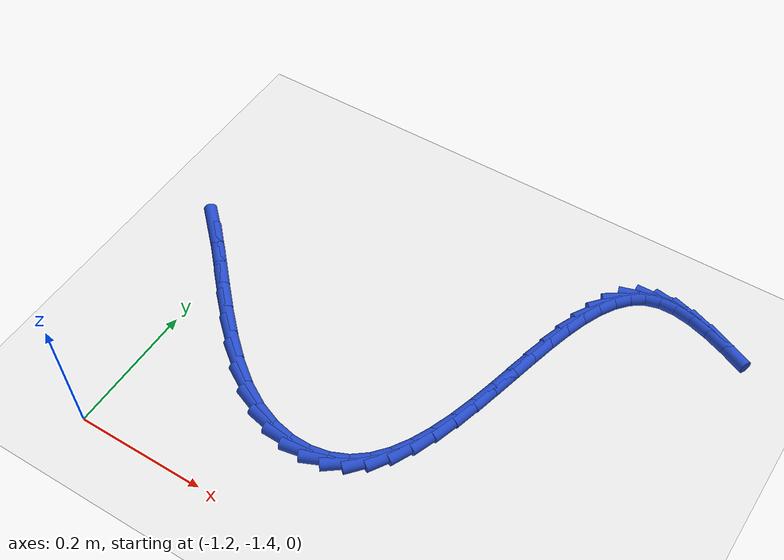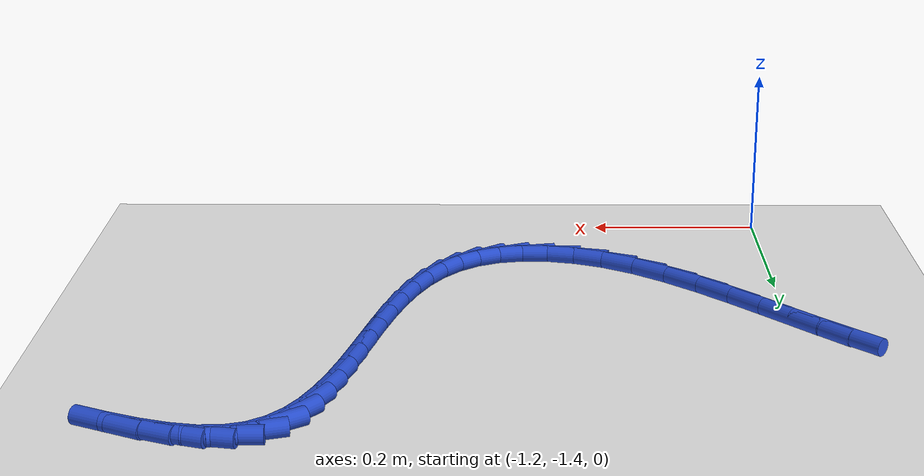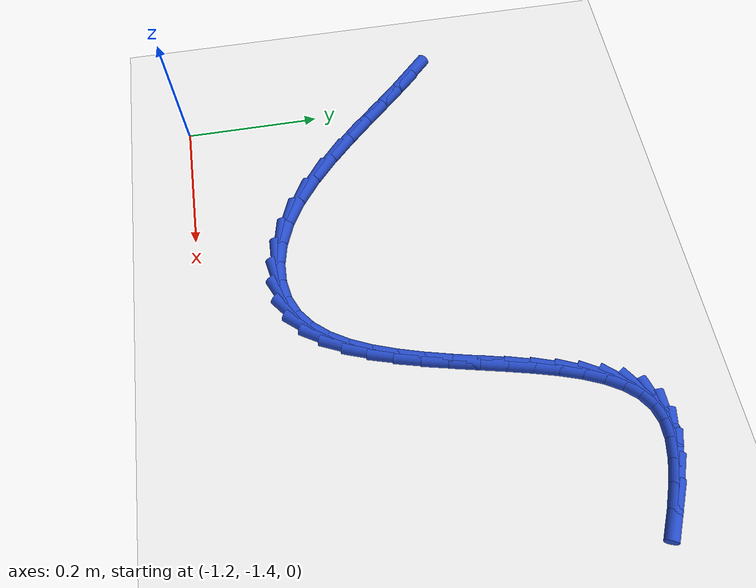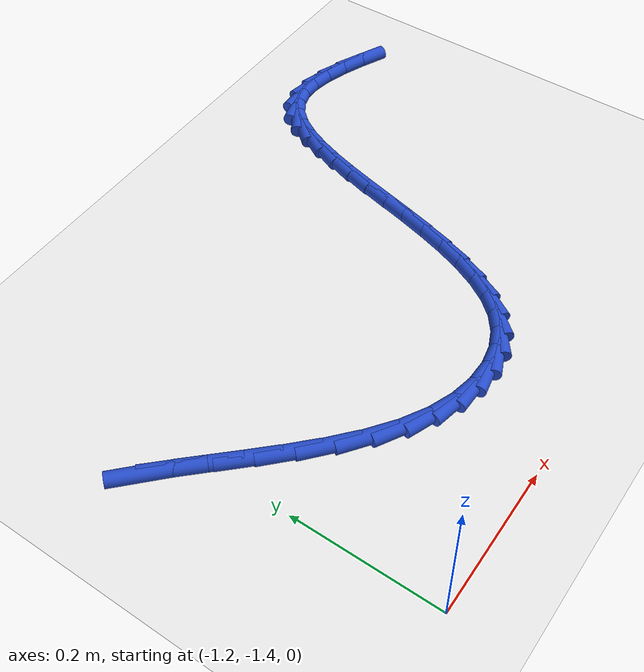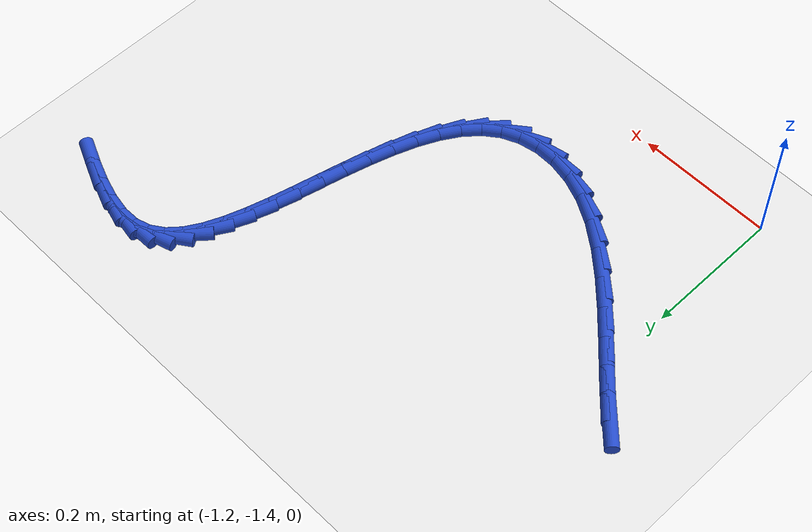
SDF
<sdf version="1.6">
 <world name="default">
  <model name="ground_plane">
   <static>1</static>
   <link name="link">
    <collision name="collision">
     <geometry><plane><normal>0 0 1</normal><size>100 100</size></plane></geometry>
     <surface><friction><ode><mu>100</mu><mu2>50</mu2></ode></friction></surface>
    </collision>
    <visual name="visual">
     <cast_shadows>0</cast_shadows>
     <geometry><plane><normal>0 0 1</normal><size>100 100</size></plane></geometry>
     <material>
      <script><uri>file://media/materials/scripts/gazebo.material</uri><name>Gazebo/WhiteGlow</name></script>
     </material>
    </visual>
   </link>
  </model>
  <model name="line">
   <link name="link_206">
    <pose>-1.2569315825818315 -1.0362236375193883 0.01 0 1.57 -0.767453456586639</pose>
    <collision name="collision">
     <geometry><cylinder><radius>0.01</radius><length>0.08</length></cylinder></geometry>
    </collision>
    <visual name="visual">
     <material>
      <script><name>Gazebo/Blue</name><uri>file://media/materials/scripts/gazebo.material</uri></script>
     </material>
     <geometry><cylinder><radius>0.01</radius><length>0.08</length></cylinder></geometry>
    </visual>
   </link>
   <link name="link_207">
    <pose>-1.2307007327769397 -1.0615295754976846 0.01 0 1.57 -0.8025671334297664</pose>
    <collision name="collision">
     <geometry><cylinder><radius>0.01</radius><length>0.08</length></cylinder></geometry>
    </collision>
    <visual name="visual">
     <material>
      <script><name>Gazebo/Blue</name><uri>file://media/materials/scripts/gazebo.material</uri></script>
     </material>
     <geometry><cylinder><radius>0.01</radius><length>0.08</length></cylinder></geometry>
    </visual>
   </link>
   <link name="link_208">
    <pose>-1.2021254036725506 -1.091103363153447 0.01 0 1.57 -0.8110225085480535</pose>
    <collision name="collision">
     <geometry><cylinder><radius>0.01</radius><length>0.08</length></cylinder></geometry>
    </collision>
    <visual name="visual">
     <material>
      <script><name>Gazebo/Blue</name><uri>file://media/materials/scripts/gazebo.material</uri></script>
     </material>
     <geometry><cylinder><radius>0.01</radius><length>0.08</length></cylinder></geometry>
    </visual>
   </link>
   <link name="link_209">
    <pose>-1.1715904310327716 -1.1232447274894388 0.01 0 1.57 -0.7992011722619942</pose>
    <collision name="collision">
     <geometry><cylinder><radius>0.01</radius><length>0.08</length></cylinder></geometry>
    </collision>
    <visual name="visual">
     <material>
      <script><name>Gazebo/Blue</name><uri>file://media/materials/scripts/gazebo.material</uri></script>
     </material>
     <geometry><cylinder><radius>0.01</radius><length>0.08</length></cylinder></geometry>
    </visual>
   </link>
   <link name="link_210">
    <pose>-1.1394806506217068 -1.1562533955084249 0.01 0 1.57 -0.7682322900083209</pose>
    <collision name="collision">
     <geometry><cylinder><radius>0.01</radius><length>0.08</length></cylinder></geometry>
    </collision>
    <visual name="visual">
     <material>
      <script><name>Gazebo/Blue</name><uri>file://media/materials/scripts/gazebo.material</uri></script>
     </material>
     <geometry><cylinder><radius>0.01</radius><length>0.08</length></cylinder></geometry>
    </visual>
   </link>
   <link name="link_211">
    <pose>-1.1061808982034627 -1.18842909421317 0.01 0 1.57 -0.7155103179483498</pose>
    <collision name="collision">
     <geometry><cylinder><radius>0.01</radius><length>0.08</length></cylinder></geometry>
    </collision>
    <visual name="visual">
     <material>
      <script><name>Gazebo/Blue</name><uri>file://media/materials/scripts/gazebo.material</uri></script>
     </material>
     <geometry><cylinder><radius>0.01</radius><length>0.08</length></cylinder></geometry>
    </visual>
   </link>
   <link name="link_212">
    <pose>-1.0720760095421442 -1.2180715506064381 0.01 0 1.57 -0.6344507097680534</pose>
    <collision name="collision">
     <geometry><cylinder><radius>0.01</radius><length>0.08</length></cylinder></geometry>
    </collision>
    <visual name="visual">
     <material>
      <script><name>Gazebo/Blue</name><uri>file://media/materials/scripts/gazebo.material</uri></script>
     </material>
     <geometry><cylinder><radius>0.01</radius><length>0.08</length></cylinder></geometry>
    </visual>
   </link>
   <link name="link_213">
    <pose>-1.0375508204018573 -1.2434804916909943 0.01 0 1.57 -0.5150592958132321</pose>
    <collision name="collision">
     <geometry><cylinder><radius>0.01</radius><length>0.08</length></cylinder></geometry>
    </collision>
    <visual name="visual">
     <material>
      <script><name>Gazebo/Blue</name><uri>file://media/materials/scripts/gazebo.material</uri></script>
     </material>
     <geometry><cylinder><radius>0.01</radius><length>0.08</length></cylinder></geometry>
    </visual>
   </link>
   <link name="link_214">
    <pose>-1.0030003245926105 -1.263036759272827 0.01 0 1.57 -0.3676125914726553</pose>
    <collision name="collision">
     <geometry><cylinder><radius>0.01</radius><length>0.08</length></cylinder></geometry>
    </collision>
    <visual name="visual">
     <material>
      <script><name>Gazebo/Blue</name><uri>file://media/materials/scripts/gazebo.material</uri></script>
     </material>
     <geometry><cylinder><radius>0.01</radius><length>0.08</length></cylinder></geometry>
    </visual>
   </link>
   <link name="link_215">
    <pose>-0.9689484521853895 -1.2761507868271293 0.01 0 1.57 -0.20328295177722236</pose>
    <collision name="collision">
     <geometry><cylinder><radius>0.01</radius><length>0.08</length></cylinder></geometry>
    </collision>
    <visual name="visual">
     <material>
      <script><name>Gazebo/Blue</name><uri>file://media/materials/scripts/gazebo.material</uri></script>
     </material>
     <geometry><cylinder><radius>0.01</radius><length>0.08</length></cylinder></geometry>
    </visual>
   </link>
   <link name="link_216">
    <pose>-0.9360077771665135 -1.2829408539854947 0.01 0 1.57 -0.0191648331238883</pose>
    <collision name="collision">
     <geometry><cylinder><radius>0.01</radius><length>0.08</length></cylinder></geometry>
    </collision>
    <visual name="visual">
     <material>
      <script><name>Gazebo/Blue</name><uri>file://media/materials/scripts/gazebo.material</uri></script>
     </material>
     <geometry><cylinder><radius>0.01</radius><length>0.08</length></cylinder></geometry>
    </visual>
   </link>
   <link name="link_217">
    <pose>-0.9047926167555085 -1.2835391605783422 0.01 0 1.57 0.18692424014758846</pose>
    <collision name="collision">
     <geometry><cylinder><radius>0.01</radius><length>0.08</length></cylinder></geometry>
    </collision>
    <visual name="visual">
     <material>
      <script><name>Gazebo/Blue</name><uri>file://media/materials/scripts/gazebo.material</uri></script>
     </material>
     <geometry><cylinder><radius>0.01</radius><length>0.08</length></cylinder></geometry>
    </visual>
   </link>
   <link name="link_218">
    <pose>-0.8759172881719042 -1.2780779064360925 0.01 0 1.57 0.4139668559730344</pose>
    <collision name="collision">
     <geometry><cylinder><radius>0.01</radius><length>0.08</length></cylinder></geometry>
    </collision>
    <visual name="visual">
     <material>
      <script><name>Gazebo/Blue</name><uri>file://media/materials/scripts/gazebo.material</uri></script>
     </material>
     <geometry><cylinder><radius>0.01</radius><length>0.08</length></cylinder></geometry>
    </visual>
   </link>
   <link name="link_219">
    <pose>-0.8499961086352261 -1.2666892913891648 0.01 0 1.57 0.6503327881183212</pose>
    <collision name="collision">
     <geometry><cylinder><radius>0.01</radius><length>0.08</length></cylinder></geometry>
    </collision>
    <visual name="visual">
     <material>
      <script><name>Gazebo/Blue</name><uri>file://media/materials/scripts/gazebo.material</uri></script>
     </material>
     <geometry><cylinder><radius>0.01</radius><length>0.08</length></cylinder></geometry>
    </visual>
   </link>
   <link name="link_220">
    <pose>-0.8275122671936086 -1.2495851667390632 0.01 0 1.57 0.8562100219547522</pose>
    <collision name="collision">
     <geometry><cylinder><radius>0.01</radius><length>0.08</length></cylinder></geometry>
    </collision>
    <visual name="visual">
     <material>
      <script><name>Gazebo/Blue</name><uri>file://media/materials/scripts/gazebo.material</uri></script>
     </material>
     <geometry><cylinder><radius>0.01</radius><length>0.08</length></cylinder></geometry>
    </visual>
   </link>
   <link name="link_221">
    <pose>-0.8082614951175119 -1.2273949677642433 0.01 0 1.57 1.0155280773129682</pose>
    <collision name="collision">
     <geometry><cylinder><radius>0.01</radius><length>0.08</length></cylinder></geometry>
    </collision>
    <visual name="visual">
     <material>
      <script><name>Gazebo/Blue</name><uri>file://media/materials/scripts/gazebo.material</uri></script>
     </material>
     <geometry><cylinder><radius>0.01</radius><length>0.08</length></cylinder></geometry>
    </visual>
   </link>
   <link name="link_222">
    <pose>-0.7918150068278952 -1.2008845085026274 0.01 0 1.57 1.1330536686029273</pose>
    <collision name="collision">
     <geometry><cylinder><radius>0.01</radius><length>0.08</length></cylinder></geometry>
    </collision>
    <visual name="visual">
     <material>
      <script><name>Gazebo/Blue</name><uri>file://media/materials/scripts/gazebo.material</uri></script>
     </material>
     <geometry><cylinder><radius>0.01</radius><length>0.08</length></cylinder></geometry>
    </visual>
   </link>
   <link name="link_223">
    <pose>-0.7777438910049039 -1.1708196793711565 0.01 0 1.57 1.2172484903292211</pose>
    <collision name="collision">
     <geometry><cylinder><radius>0.01</radius><length>0.08</length></cylinder></geometry>
    </collision>
    <visual name="visual">
     <material>
      <script><name>Gazebo/Blue</name><uri>file://media/materials/scripts/gazebo.material</uri></script>
     </material>
     <geometry><cylinder><radius>0.01</radius><length>0.08</length></cylinder></geometry>
    </visual>
   </link>
   <link name="link_224">
    <pose>-0.7656192363286832 -1.1379663707867709 0.01 0 1.57 1.2755470376789757</pose>
    <collision name="collision">
     <geometry><cylinder><radius>0.01</radius><length>0.08</length></cylinder></geometry>
    </collision>
    <visual name="visual">
     <material>
      <script><name>Gazebo/Blue</name><uri>file://media/materials/scripts/gazebo.material</uri></script>
     </material>
     <geometry><cylinder><radius>0.01</radius><length>0.08</length></cylinder></geometry>
    </visual>
   </link>
   <link name="link_225">
    <pose>-0.7550121314793787 -1.1030904731664113 0.01 0 1.57 1.313216684406056</pose>
    <collision name="collision">
     <geometry><cylinder><radius>0.01</radius><length>0.08</length></cylinder></geometry>
    </collision>
    <visual name="visual">
     <material>
      <script><name>Gazebo/Blue</name><uri>file://media/materials/scripts/gazebo.material</uri></script>
     </material>
     <geometry><cylinder><radius>0.01</radius><length>0.08</length></cylinder></geometry>
    </visual>
   </link>
   <link name="link_226">
    <pose>-0.7454936651371351 -1.0669578769270163 0.01 0 1.57 1.3334675291864788</pose>
    <collision name="collision">
     <geometry><cylinder><radius>0.01</radius><length>0.08</length></cylinder></geometry>
    </collision>
    <visual name="visual">
     <material>
      <script><name>Gazebo/Blue</name><uri>file://media/materials/scripts/gazebo.material</uri></script>
     </material>
     <geometry><cylinder><radius>0.01</radius><length>0.08</length></cylinder></geometry>
    </visual>
   </link>
   <link name="link_227">
    <pose>-0.7366349259820985 -1.0303344724855292 0.01 0 1.57 1.3377416188460631</pose>
    <collision name="collision">
     <geometry><cylinder><radius>0.01</radius><length>0.08</length></cylinder></geometry>
    </collision>
    <visual name="visual">
     <material>
      <script><name>Gazebo/Blue</name><uri>file://media/materials/scripts/gazebo.material</uri></script>
     </material>
     <geometry><cylinder><radius>0.01</radius><length>0.08</length></cylinder></geometry>
    </visual>
   </link>
   <link name="link_228">
    <pose>-0.728007002694414 -0.9939861502588893 0.01 0 1.57 1.325839486499657</pose>
    <collision name="collision">
     <geometry><cylinder><radius>0.01</radius><length>0.08</length></cylinder></geometry>
    </collision>
    <visual name="visual">
     <material>
      <script><name>Gazebo/Blue</name><uri>file://media/materials/scripts/gazebo.material</uri></script>
     </material>
     <geometry><cylinder><radius>0.01</radius><length>0.08</length></cylinder></geometry>
    </visual>
   </link>
   <link name="link_229">
    <pose>-0.7191809839542265 -0.9586788006640365 0.01 0 1.57 1.295771176756246</pose>
    <collision name="collision">
     <geometry><cylinder><radius>0.01</radius><length>0.08</length></cylinder></geometry>
    </collision>
    <visual name="visual">
     <material>
      <script><name>Gazebo/Blue</name><uri>file://media/materials/scripts/gazebo.material</uri></script>
     </material>
     <geometry><cylinder><radius>0.01</radius><length>0.08</length></cylinder></geometry>
    </visual>
   </link>
   <link name="link_230">
    <pose>-0.7097279584416815 -0.9251783141179113 0.01 0 1.57 1.2432458054357576</pose>
    <collision name="collision">
     <geometry><cylinder><radius>0.01</radius><length>0.08</length></cylinder></geometry>
    </collision>
    <visual name="visual">
     <material>
      <script><name>Gazebo/Blue</name><uri>file://media/materials/scripts/gazebo.material</uri></script>
     </material>
     <geometry><cylinder><radius>0.01</radius><length>0.08</length></cylinder></geometry>
    </visual>
   </link>
   <link name="link_231">
    <pose>-0.6992190148369245 -0.8942505810374546 0.01 0 1.57 1.160714199227751</pose>
    <collision name="collision">
     <geometry><cylinder><radius>0.01</radius><length>0.08</length></cylinder></geometry>
    </collision>
    <visual name="visual">
     <material>
      <script><name>Gazebo/Blue</name><uri>file://media/materials/scripts/gazebo.material</uri></script>
     </material>
     <geometry><cylinder><radius>0.01</radius><length>0.08</length></cylinder></geometry>
    </visual>
   </link>
   <link name="link_232">
    <pose>-0.6872252418201004 -0.8666614918396062 0.01 0 1.57 1.0361331117701373</pose>
    <collision name="collision">
     <geometry><cylinder><radius>0.01</radius><length>0.08</length></cylinder></geometry>
    </collision>
    <visual name="visual">
     <material>
      <script><name>Gazebo/Blue</name><uri>file://media/materials/scripts/gazebo.material</uri></script>
     </material>
     <geometry><cylinder><radius>0.01</radius><length>0.08</length></cylinder></geometry>
    </visual>
   </link>
   <link name="link_233">
    <pose>-0.6733177280713548 -0.8431769369413068 0.01 0 1.57 0.85309927463562</pose>
    <collision name="collision">
     <geometry><cylinder><radius>0.01</radius><length>0.08</length></cylinder></geometry>
    </collision>
    <visual name="visual">
     <material>
      <script><name>Gazebo/Blue</name><uri>file://media/materials/scripts/gazebo.material</uri></script>
     </material>
     <geometry><cylinder><radius>0.01</radius><length>0.08</length></cylinder></geometry>
    </visual>
   </link>
   <link name="link_234">
    <pose>-0.6570675622708327 -0.8245628067594966 0.01 0 1.57 0.598722236725587</pose>
    <collision name="collision">
     <geometry><cylinder><radius>0.01</radius><length>0.08</length></cylinder></geometry>
    </collision>
    <visual name="visual">
     <material>
      <script><name>Gazebo/Blue</name><uri>file://media/materials/scripts/gazebo.material</uri></script>
     </material>
     <geometry><cylinder><radius>0.01</radius><length>0.08</length></cylinder></geometry>
    </visual>
   </link>
   <link name="link_235">
    <pose>-0.6380458330986796 -0.8115849917111164 0.01 0 1.57 0.29024932772020506</pose>
    <collision name="collision">
     <geometry><cylinder><radius>0.01</radius><length>0.08</length></cylinder></geometry>
    </collision>
    <visual name="visual">
     <material>
      <script><name>Gazebo/Blue</name><uri>file://media/materials/scripts/gazebo.material</uri></script>
     </material>
     <geometry><cylinder><radius>0.01</radius><length>0.08</length></cylinder></geometry>
    </visual>
   </link>
   <link name="link_236">
    <pose>-0.6158524727967154 -0.8049561825995166 0.01 0 1.57 0.018359321510527302</pose>
    <collision name="collision">
     <geometry><cylinder><radius>0.01</radius><length>0.08</length></cylinder></geometry>
    </collision>
    <visual name="visual">
     <material>
      <script><name>Gazebo/Blue</name><uri>file://media/materials/scripts/gazebo.material</uri></script>
     </material>
     <geometry><cylinder><radius>0.01</radius><length>0.08</length></cylinder></geometry>
    </visual>
   </link>
   <link name="link_237">
    <pose>-0.5905737671183178 -0.8044920305636716 0.01 0 1.57 -0.16949027066463537</pose>
    <collision name="collision">
     <geometry><cylinder><radius>0.01</radius><length>0.08</length></cylinder></geometry>
    </collision>
    <visual name="visual">
     <material>
      <script><name>Gazebo/Blue</name><uri>file://media/materials/scripts/gazebo.material</uri></script>
     </material>
     <geometry><cylinder><radius>0.01</radius><length>0.08</length></cylinder></geometry>
    </visual>
   </link>
   <link name="link_238">
    <pose>-0.5627005482725073 -0.8092620335676198 0.01 0 1.57 -0.2933410518335042</pose>
    <collision name="collision">
     <geometry><cylinder><radius>0.01</radius><length>0.08</length></cylinder></geometry>
    </collision>
    <visual name="visual">
     <material>
      <script><name>Gazebo/Blue</name><uri>file://media/materials/scripts/gazebo.material</uri></script>
     </material>
     <geometry><cylinder><radius>0.01</radius><length>0.08</length></cylinder></geometry>
    </visual>
   </link>
   <link name="link_239">
    <pose>-0.532735956457533 -0.8183129884860376 0.01 0 1.57 -0.37386544651908654</pose>
    <collision name="collision">
     <geometry><cylinder><radius>0.01</radius><length>0.08</length></cylinder></geometry>
    </collision>
    <visual name="visual">
     <material>
      <script><name>Gazebo/Blue</name><uri>file://media/materials/scripts/gazebo.material</uri></script>
     </material>
     <geometry><cylinder><radius>0.01</radius><length>0.08</length></cylinder></geometry>
    </visual>
   </link>
   <link name="link_240">
    <pose>-0.5011831318716442 -0.8306916921936008 0.01 0 1.57 -0.42453905459625935</pose>
    <collision name="collision">
     <geometry><cylinder><radius>0.01</radius><length>0.08</length></cylinder></geometry>
    </collision>
    <visual name="visual">
     <material>
      <script><name>Gazebo/Blue</name><uri>file://media/materials/scripts/gazebo.material</uri></script>
     </material>
     <geometry><cylinder><radius>0.01</radius><length>0.08</length></cylinder></geometry>
    </visual>
   </link>
  </model>
 </world>
</sdf>
